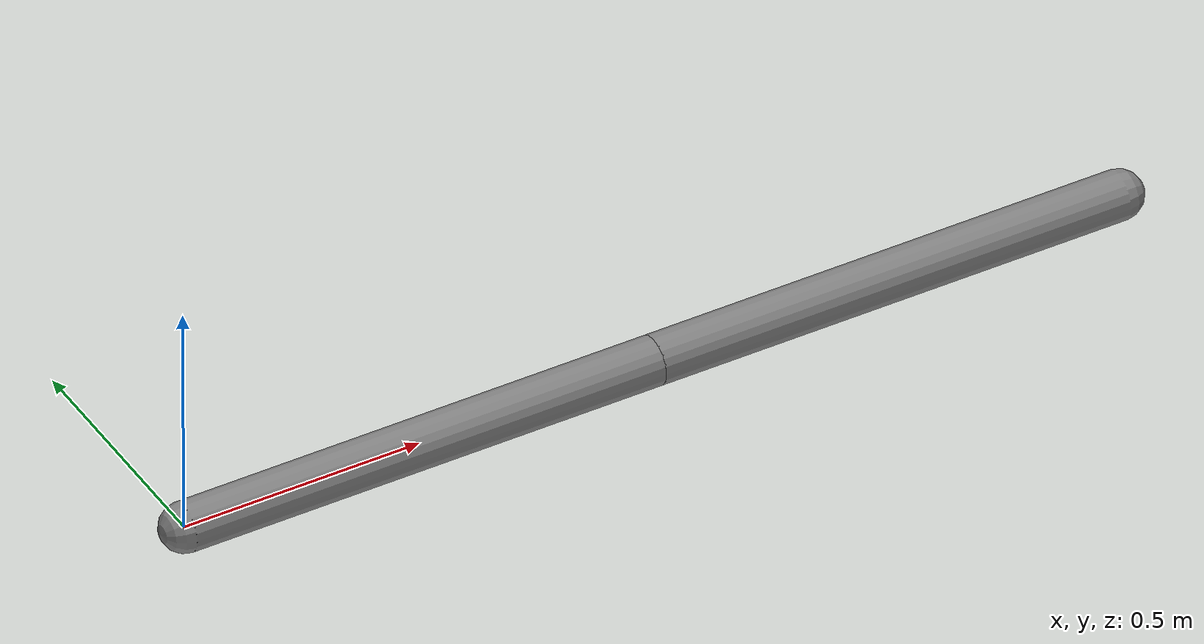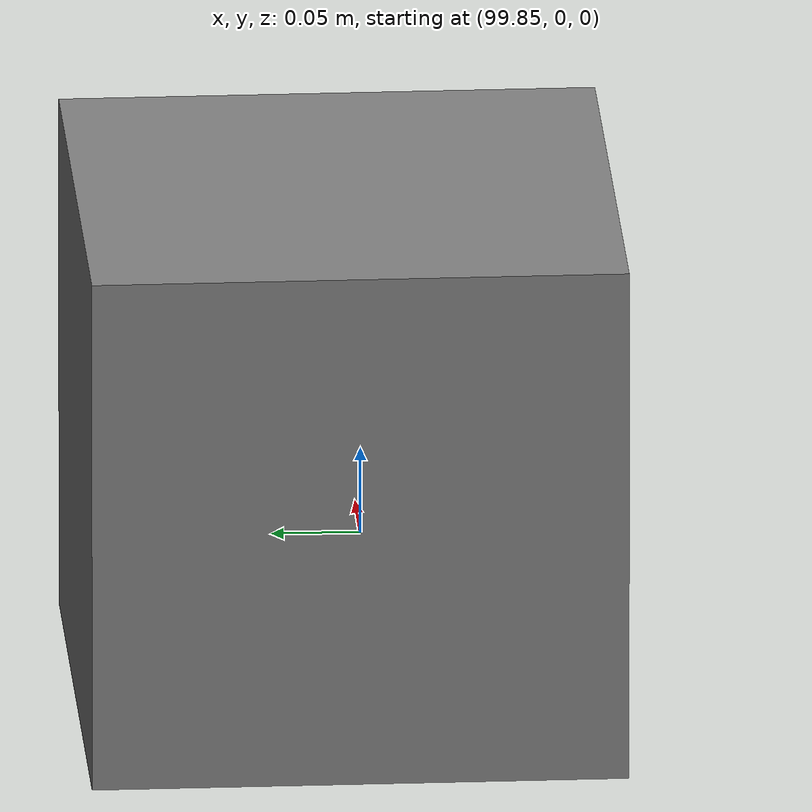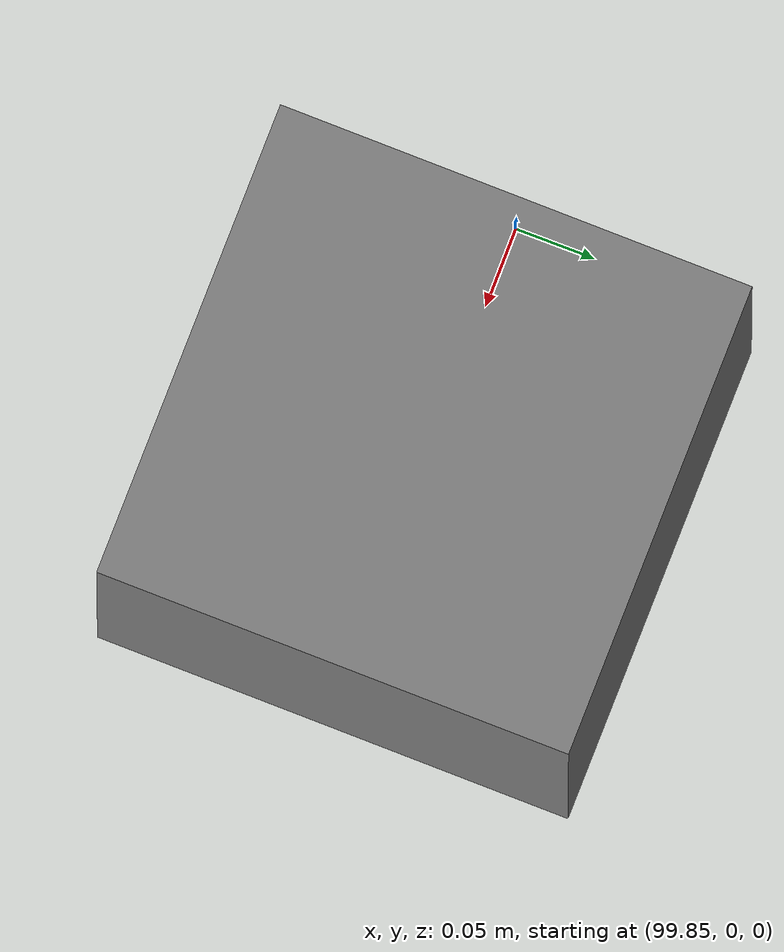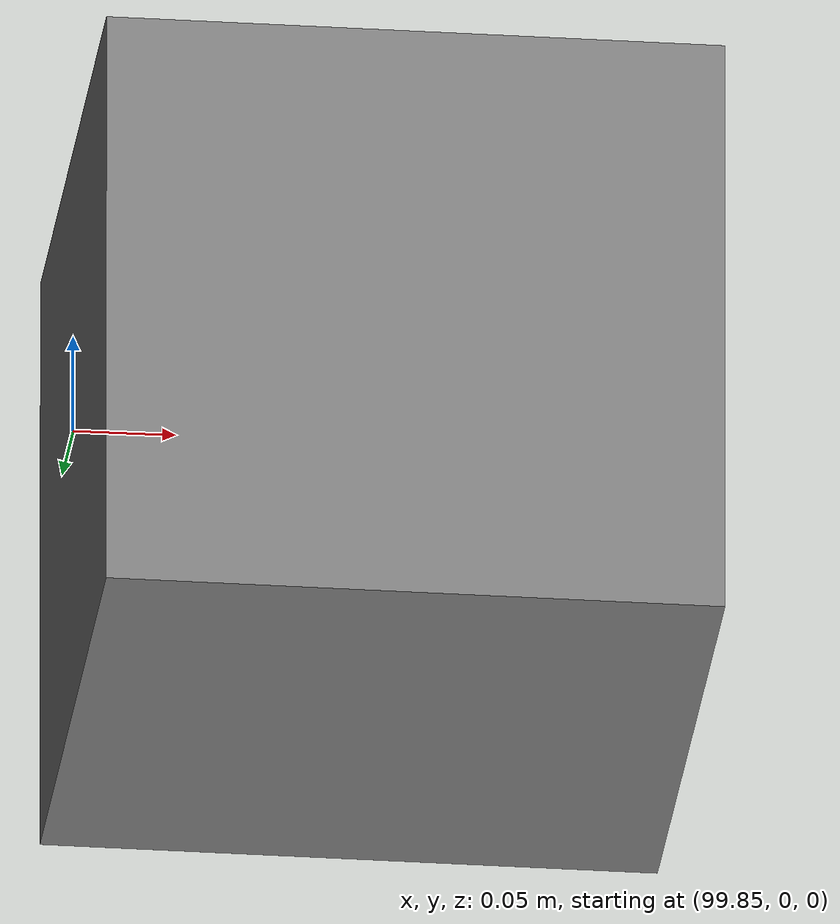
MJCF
<mujoco model="slider_crank">

    <option gravity="0 0 -9.81" timestep="0.002"/>

    <worldbody>

        <!-- Tay quay (link1) -->
        <body name="link1" pos="0 0 0">
            <joint name="joint1" type="hinge" axis="0 0 1"/>

            <geom type="capsule"
                  fromto="0 0 0 1 0 0"
                  size="0.05"
                  density="1000"/>

            <!-- Thanh truyền (link2) -->
            <body name="link2" pos="1 0 0">
                <joint name="joint2" type="hinge" axis="0 0 1"/>

                <geom type="capsule"
                      fromto="0 0 0 1 0 0"
                      size="0.05"
                      density="1000"/>

                <!-- điểm nối ở đầu link2 -->
                <site name="link2_end" pos="1 0 0" size="0.02"/>
            </body>
        </body>

        <!-- Con trượt -->
        <body name="slider" pos="100 0 0">
            <joint name="joint3" type="slide" axis="1 0 0"/>

            <geom type="box"
                  size="0.15 0.15 0.15"
                  density="2000"/>

            <!-- điểm nối slider -->
            <site name="slider_joint" pos="0 0 0" size="0.02"/>
        </body>

    </worldbody>

    <!-- Ràng buộc để link2 gắn với slider -->
    <equality>
        <connect site1="link2_end" site2="slider_joint"/>
    </equality>

</mujoco>
